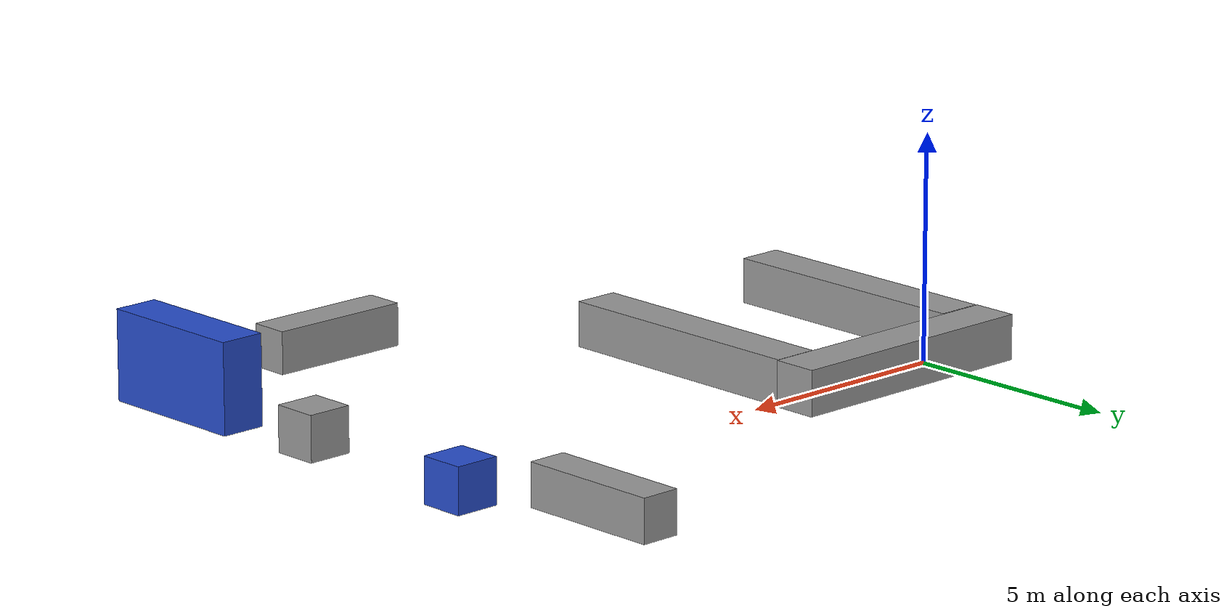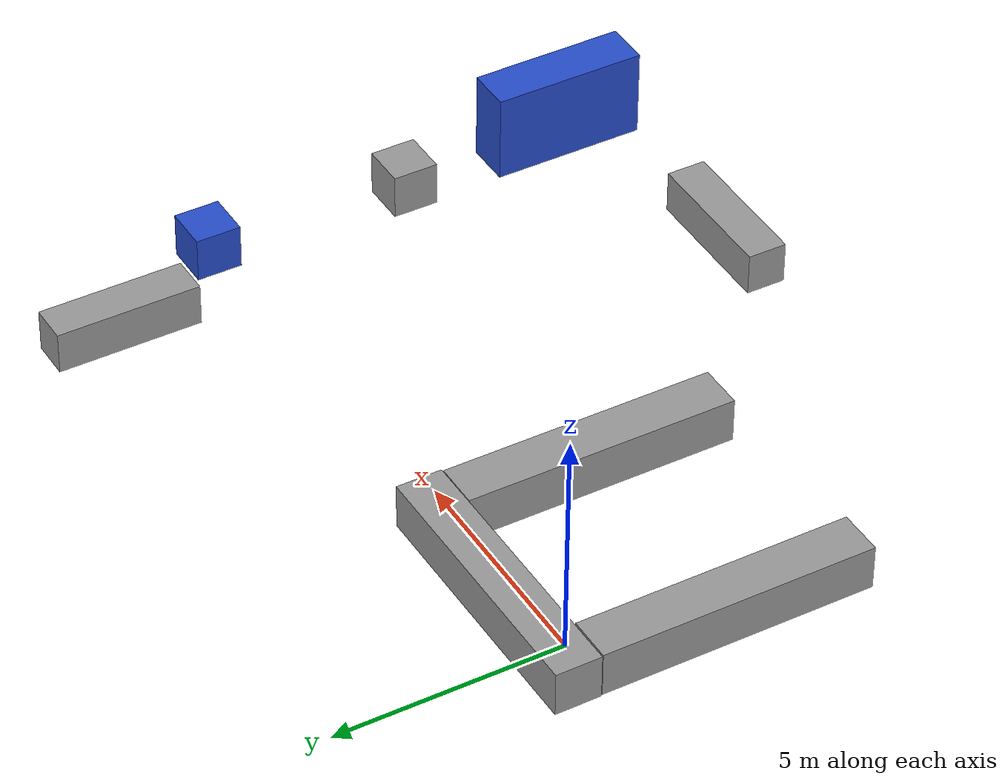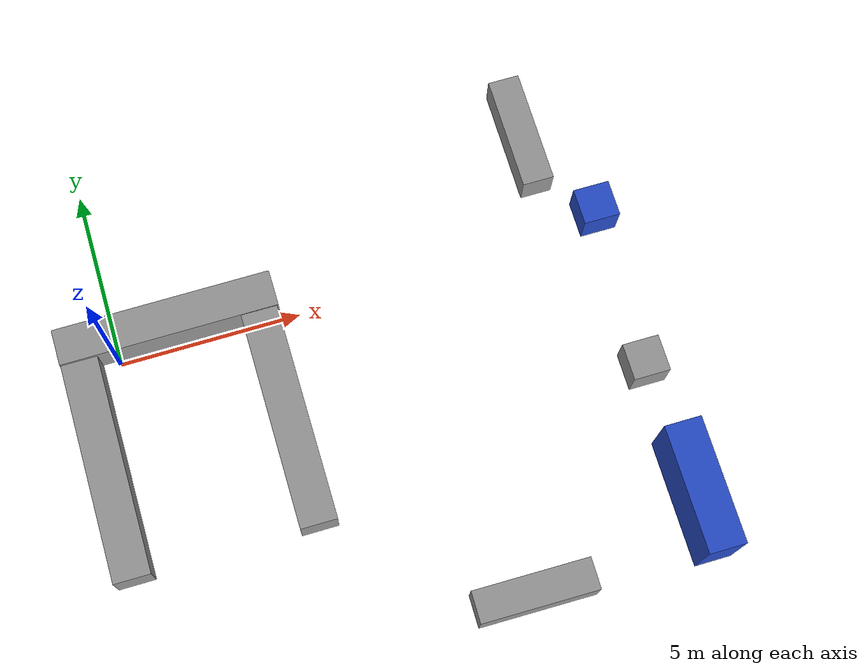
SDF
<sdf version="1.7">
 <world name="lab_arm_world">
  <model name="ground_plane">
   <static>1</static>
   <link name="link_ground_plane">
    <collision name="collision">
     <geometry><plane><normal>0 0 1</normal><size>10 10</size></plane></geometry>
    </collision>
   </link>
  </model>
  <model name="stage_1_clone">
   <link name="link">
    <inertial>
     <mass>260.037</mass>
     <inertia><ixx>35.3694</ixx><ixy>0</ixy><ixz>0</ixz><iyy>240.548</iyy><iyz>0</iyz><izz>237.704</izz></inertia>
    </inertial>
    <self_collide>1</self_collide>
    <visual name="visual">
     <geometry><box><size>3.1967 0.866292 0.939009</size></box></geometry>
     <material>
      <script><name>Gazebo/Grey</name><uri>file://media/materials/scripts/gazebo.material</uri></script>
      <shader type="pixel"><normal_map>__default__</normal_map></shader>
      <ambient>0 0 0 1</ambient>
      <diffuse>0 0 0 1</diffuse>
      <specular>0.1 0.1 0.1 1</specular>
      <emissive>0 0 0 1</emissive>
     </material>
    </visual>
    <collision name="collision">
     <geometry><box><size>3.1967 0.866292 0.939009</size></box></geometry>
     <surface>
      <friction>
       <ode><mu>1</mu><mu2>1</mu2><fdir1>0 0 0</fdir1><slip1>0</slip1><slip2>0</slip2></ode>
       <torsional>
        <coefficient>1</coefficient>
        <patch_radius>0</patch_radius>
        <surface_radius>0</surface_radius>
        <use_patch_radius>1</use_patch_radius>
        <ode><slip>0</slip></ode>
       </torsional>
      </friction>
      <bounce><restitution_coefficient>0</restitution_coefficient><threshold>1e+06</threshold></bounce>
      <contact>
       <collide_without_contact>0</collide_without_contact>
       <collide_without_contact_bitmask>1</collide_without_contact_bitmask>
       <collide_bitmask>1</collide_bitmask>
       <ode>
        <soft_cfm>0</soft_cfm>
        <soft_erp>0.2</soft_erp>
        <kp>1e+13</kp>
        <kd>1</kd>
        <max_vel>0.01</max_vel>
        <min_depth>0</min_depth>
       </ode>
       <bullet>
        <split_impulse>1</split_impulse>
        <split_impulse_penetration_threshold>-0.01</split_impulse_penetration_threshold>
        <soft_cfm>0</soft_cfm>
        <soft_erp>0.2</soft_erp>
        <kp>1e+13</kp>
        <kd>1</kd>
       </bullet>
      </contact>
     </surface>
    </collision>
   </link>
   <static>0</static>
   <pose>8.78804 -9.04028 0.468918 3.6e-05 0.000156 -0.006946</pose>
  </model>
  <model name="storage_0">
   <link name="link">
    <inertial>
     <mass>1</mass>
     <inertia>
      <ixx>0.166667</ixx>
      <ixy>0</ixy>
      <ixz>0</ixz>
      <iyy>0.166667</iyy>
      <iyz>0</iyz>
      <izz>0.166667</izz>
     </inertia>
    </inertial>
    <visual name="visual">
     <geometry><box><size>1 0.999998 0.999999</size></box></geometry>
     <material>
      <script><name>Gazebo/Blue</name><uri>file://media/materials/scripts/gazebo.material</uri></script>
      <shader type="pixel"><normal_map>__default__</normal_map></shader>
      <ambient>0 0 1 1</ambient>
      <diffuse>0 0 1 1</diffuse>
      <specular>0.1 0.1 0.1 1</specular>
      <emissive>0 0 0 1</emissive>
     </material>
    </visual>
    <collision name="collision">
     <geometry><box><size>1 0.999998 0.999999</size></box></geometry>
     <surface>
      <friction>
       <ode><mu>1</mu><mu2>1</mu2><fdir1>0 0 0</fdir1><slip1>0</slip1><slip2>0</slip2></ode>
       <torsional>
        <coefficient>1</coefficient>
        <patch_radius>0</patch_radius>
        <surface_radius>0</surface_radius>
        <use_patch_radius>1</use_patch_radius>
        <ode><slip>0</slip></ode>
       </torsional>
      </friction>
      <bounce><restitution_coefficient>0</restitution_coefficient><threshold>1e+06</threshold></bounce>
      <contact>
       <collide_without_contact>0</collide_without_contact>
       <collide_without_contact_bitmask>1</collide_without_contact_bitmask>
       <collide_bitmask>1</collide_bitmask>
       <ode>
        <soft_cfm>0</soft_cfm>
        <soft_erp>0.2</soft_erp>
        <kp>1e+13</kp>
        <kd>1</kd>
        <max_vel>0.01</max_vel>
        <min_depth>0</min_depth>
       </ode>
       <bullet>
        <split_impulse>1</split_impulse>
        <split_impulse_penetration_threshold>-0.01</split_impulse_penetration_threshold>
        <soft_cfm>0</soft_cfm>
        <soft_erp>0.2</soft_erp>
        <kp>1e+13</kp>
        <kd>1</kd>
       </bullet>
      </contact>
     </surface>
    </collision>
   </link>
   <static>0</static>
   <pose>13.6073 0.526696 0.499999 0 -0 0</pose>
  </model>
  <model name="stage_1_clone_clone">
   <link name="link">
    <inertial>
     <mass>260.037</mass>
     <inertia><ixx>35.3694</ixx><ixy>0</ixy><ixz>0</ixz><iyy>240.548</iyy><iyz>0</iyz><izz>237.704</izz></inertia>
    </inertial>
    <self_collide>1</self_collide>
    <visual name="visual">
     <geometry><box><size>3.1967 0.866292 0.939011</size></box></geometry>
     <material>
      <script><name>Gazebo/Grey</name><uri>file://media/materials/scripts/gazebo.material</uri></script>
      <shader type="pixel"><normal_map>__default__</normal_map></shader>
      <ambient>0 0 0 1</ambient>
      <diffuse>0 0 0 1</diffuse>
      <specular>0.1 0.1 0.1 1</specular>
      <emissive>0 0 0 1</emissive>
     </material>
    </visual>
    <collision name="collision">
     <geometry><box><size>3.1967 0.866292 0.939011</size></box></geometry>
     <surface>
      <friction>
       <ode><mu>1</mu><mu2>1</mu2><fdir1>0 0 0</fdir1><slip1>0</slip1><slip2>0</slip2></ode>
       <torsional>
        <coefficient>1</coefficient>
        <patch_radius>0</patch_radius>
        <surface_radius>0</surface_radius>
        <use_patch_radius>1</use_patch_radius>
        <ode><slip>0</slip></ode>
       </torsional>
      </friction>
      <bounce><restitution_coefficient>0</restitution_coefficient><threshold>1e+06</threshold></bounce>
      <contact>
       <collide_without_contact>0</collide_without_contact>
       <collide_without_contact_bitmask>1</collide_without_contact_bitmask>
       <collide_bitmask>1</collide_bitmask>
       <ode>
        <soft_cfm>0</soft_cfm>
        <soft_erp>0.2</soft_erp>
        <kp>1e+13</kp>
        <kd>1</kd>
        <max_vel>0.01</max_vel>
        <min_depth>0</min_depth>
       </ode>
       <bullet>
        <split_impulse>1</split_impulse>
        <split_impulse_penetration_threshold>-0.01</split_impulse_penetration_threshold>
        <soft_cfm>0</soft_cfm>
        <soft_erp>0.2</soft_erp>
        <kp>1e+13</kp>
        <kd>1</kd>
       </bullet>
      </contact>
     </surface>
    </collision>
   </link>
   <static>0</static>
   <pose>12.2897 3.19353 0.469505 0 0 -1.56956</pose>
  </model>
  <model name="storage_0_clone">
   <link name="link">
    <inertial>
     <mass>1</mass>
     <inertia>
      <ixx>0.166667</ixx>
      <ixy>0</ixy>
      <ixz>0</ixz>
      <iyy>0.166667</iyy>
      <iyz>0</iyz>
      <izz>0.166667</izz>
     </inertia>
    </inertial>
    <visual name="visual">
     <geometry><box><size>1 3.40324 1.97816</size></box></geometry>
     <material>
      <script><name>Gazebo/Blue</name><uri>file://media/materials/scripts/gazebo.material</uri></script>
      <shader type="pixel"><normal_map>__default__</normal_map></shader>
      <ambient>0 0 1 1</ambient>
      <diffuse>0 0 1 1</diffuse>
      <specular>0.1 0.1 0.1 1</specular>
      <emissive>0 0 0 1</emissive>
     </material>
    </visual>
    <collision name="collision">
     <geometry><box><size>1 3.40324 1.97816</size></box></geometry>
     <surface>
      <friction>
       <ode><mu>1</mu><mu2>1</mu2><fdir1>0 0 0</fdir1><slip1>0</slip1><slip2>0</slip2></ode>
       <torsional>
        <coefficient>1</coefficient>
        <patch_radius>0</patch_radius>
        <surface_radius>0</surface_radius>
        <use_patch_radius>1</use_patch_radius>
        <ode><slip>0</slip></ode>
       </torsional>
      </friction>
      <bounce><restitution_coefficient>0</restitution_coefficient><threshold>1e+06</threshold></bounce>
      <contact>
       <collide_without_contact>0</collide_without_contact>
       <collide_without_contact_bitmask>1</collide_without_contact_bitmask>
       <collide_bitmask>1</collide_bitmask>
       <ode>
        <soft_cfm>0</soft_cfm>
        <soft_erp>0.2</soft_erp>
        <kp>1e+13</kp>
        <kd>1</kd>
        <max_vel>0.01</max_vel>
        <min_depth>0</min_depth>
       </ode>
       <bullet>
        <split_impulse>1</split_impulse>
        <split_impulse_penetration_threshold>-0.01</split_impulse_penetration_threshold>
        <soft_cfm>0</soft_cfm>
        <soft_erp>0.2</soft_erp>
        <kp>1e+13</kp>
        <kd>1</kd>
       </bullet>
      </contact>
     </surface>
    </collision>
   </link>
   <static>0</static>
   <pose>13.5575 -7.80988 0.988619 5.1e-05 2.8e-05 0.000119</pose>
  </model>
  <model name="unit_box">
   <pose>13.4674 -4.02357 0.5 0 -0 0</pose>
   <link name="link">
    <inertial>
     <mass>1</mass>
     <inertia>
      <ixx>0.166667</ixx>
      <ixy>0</ixy>
      <ixz>0</ixz>
      <iyy>0.166667</iyy>
      <iyz>0</iyz>
      <izz>0.166667</izz>
     </inertia>
    </inertial>
    <collision name="collision"><geometry><box><size>1 1 1</size></box></geometry></collision>
    <visual name="visual">
     <geometry><box><size>1 1 1</size></box></geometry>
     <material>
      <script><name>Gazebo/Grey</name><uri>file://media/materials/scripts/gazebo.material</uri></script>
     </material>
    </visual>
   </link>
  </model>
  <model name="unit_box_clone">
   <pose>-0.966512 -2.91402 0.499871 3.2e-05 -0 0</pose>
   <link name="link">
    <inertial>
     <mass>1</mass>
     <inertia>
      <ixx>0.166667</ixx>
      <ixy>0</ixy>
      <ixz>0</ixz>
      <iyy>0.166667</iyy>
      <iyz>0</iyz>
      <izz>0.166667</izz>
     </inertia>
    </inertial>
    <collision name="collision"><geometry><box><size>1 5.99338 1</size></box></geometry></collision>
    <visual name="visual">
     <geometry><box><size>1 5.99338 1</size></box></geometry>
     <material>
      <script><name>Gazebo/Grey</name><uri>file://media/materials/scripts/gazebo.material</uri></script>
     </material>
    </visual>
   </link>
  </model>
  <model name="unit_box_clone_0">
   <pose>3.96373 -2.88348 0.5 0 -0 0</pose>
   <link name="link">
    <inertial>
     <mass>1</mass>
     <inertia>
      <ixx>0.166667</ixx>
      <ixy>0</ixy>
      <ixz>0</ixz>
      <iyy>0.166667</iyy>
      <iyz>0</iyz>
      <izz>0.166667</izz>
     </inertia>
    </inertial>
    <collision name="collision"><geometry><box><size>1 5.99338 1</size></box></geometry></collision>
    <visual name="visual">
     <geometry><box><size>1 5.99338 1</size></box></geometry>
     <material>
      <script><name>Gazebo/Grey</name><uri>file://media/materials/scripts/gazebo.material</uri></script>
     </material>
    </visual>
   </link>
  </model>
  <model name="unit_box_clone_clone">
   <pose>1.5064 0.62057 0.499999 0 -0 1.57366</pose>
   <link name="link">
    <inertial>
     <mass>1</mass>
     <inertia>
      <ixx>0.166667</ixx>
      <ixy>0</ixy>
      <ixz>0</ixz>
      <iyy>0.166667</iyy>
      <iyz>0</iyz>
      <izz>0.166667</izz>
     </inertia>
    </inertial>
    <collision name="collision"><geometry><box><size>1 5.99338 1</size></box></geometry></collision>
    <visual name="visual">
     <geometry><box><size>1 5.99338 1</size></box></geometry>
     <material>
      <script><name>Gazebo/Grey</name><uri>file://media/materials/scripts/gazebo.material</uri></script>
     </material>
    </visual>
   </link>
  </model>
 </world>
</sdf>
